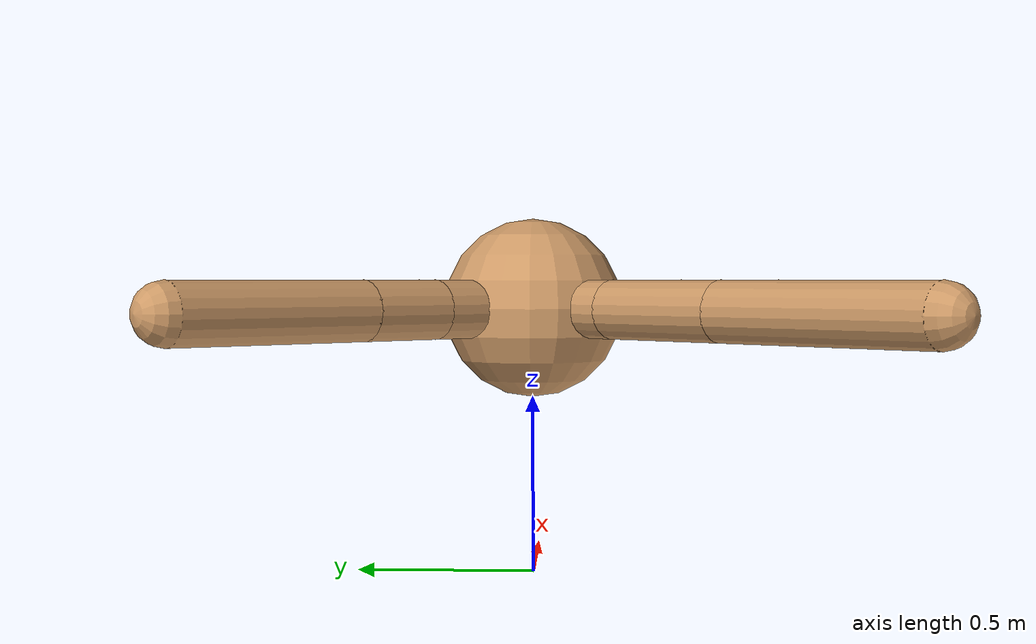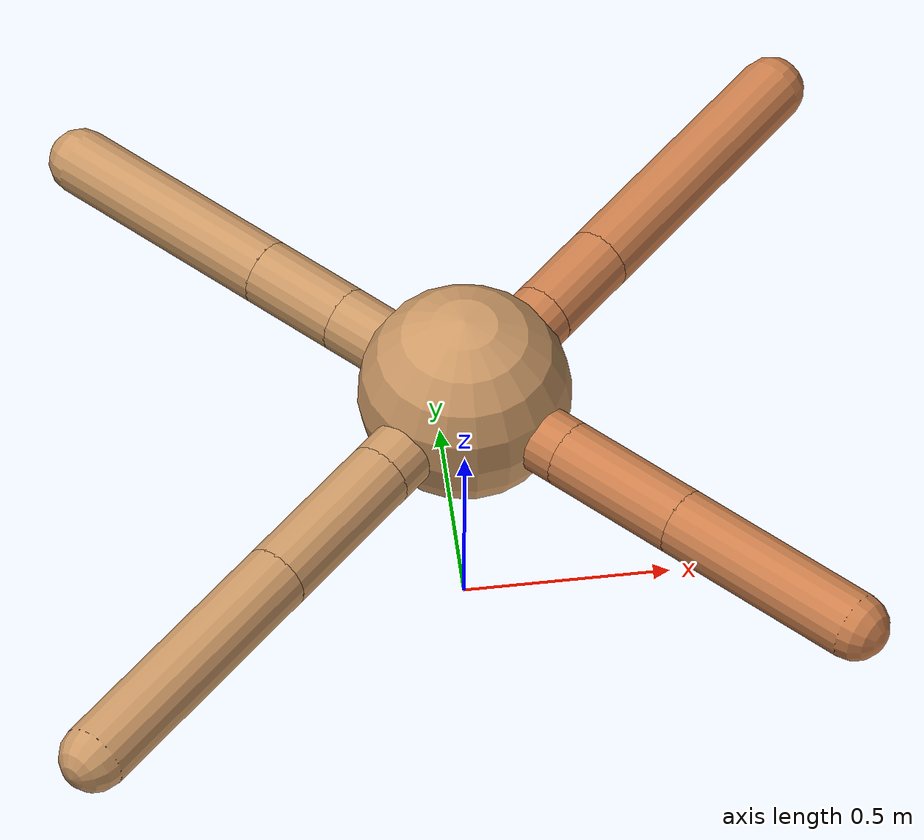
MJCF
<mujoco model="ant">
  <compiler angle="degree" coordinate="local" inertiafromgeom="true" />
  <option integrator="RK4" timestep="0.01" />
  <custom>
    <numeric data="0.0 0.0 0.55 1.0 0.0 0.0 0.0 0.0 1.0 0.0 -1.0 0.0 -1.0 0.0 1.0" name="init_qpos" />
  </custom>
  <default>
    <joint armature="1" damping="1" limited="true" />
    <geom conaffinity="0" condim="3" density="5.0" friction="1.5 0.1 0.1" margin="0.01" rgba="0.8 0.6 0.4 1" />
  </default>
  <worldbody>
    <body name="torso" pos="0 0 0.75">
      <geom name="torso_geom" pos="0 0 0" size="0.25" type="sphere" />

      <body name="front_left_leg" pos="0 0 0">
        <geom fromto="0.0 0.0 0.0 0.20916438421218367 0.20916438421218367 0.0" name="aux_1_geom" size="0.08" type="capsule" rgba=".8 .5 .3 1" />
        <body name="aux_1" pos="0.20916438421218367 0.20916438421218367 0.0">
          <joint axis="0 0 1" name="hip_1" pos="0.0 0.0 0.0" range="-40 40" type="hinge" />
          <geom fromto="0.0 0.0 0.0 0.15339728175161033 0.15339728175161033 0.0" name="left_leg_geom" size="0.08" type="capsule" rgba=".8 .5 .3 1" />
          <body pos="0.15339728175161033 0.15339728175161033 0.0" name="front_left_foot">
            <joint axis="-1 1 0" name="ankle_1" pos="0.0 0.0 0.0" range="30 100" type="hinge" />
            <geom fromto="0.0 0.0 0.0 0.4864451867190816 0.4864451867190816 0.0" name="left_ankle_geom" size="0.08" type="capsule" rgba=".8 .5 .3 1" />
          </body>
        </body>
      </body>
      <body name="front_right_leg" pos="0 0 0">
        <geom fromto="0.0 0.0 0.0 -0.25075719652340234 0.25075719652340234 0.0" name="aux_2_geom" size="0.08" type="capsule" />
        <body name="aux_2" pos="-0.25075719652340234 0.25075719652340234 0.0">
          <joint axis="0 0 1" name="hip_2" pos="0.0 0.0 0.0" range="-40 40" type="hinge" />
          <geom fromto="0.0 0.0 0.0 -0.16652147537261117 0.16652147537261117 0.0" name="right_leg_geom" size="0.08" type="capsule" />
          <body pos="-0.16652147537261117 0.16652147537261117 0.0" name="front_right_foot">
            <joint axis="1 1 0" name="ankle_2" pos="0.0 0.0 0.0" range="-100 -30" type="hinge" />
            <geom fromto="0.0 0.0 0.0 -0.40185817038613963 0.40185817038613963 0.0" name="right_ankle_geom" size="0.08" type="capsule" />
          </body>
        </body>
      </body>
      <body name="left_back_leg" pos="0 0 0">
        <geom fromto="0.0 0.0 0.0 -0.22207778975900336 -0.22207778975900336 0.0" name="aux_3_geom" size="0.08" type="capsule" />
        <body name="aux_3" pos="-0.22207778975900336 -0.22207778975900336 0.0">
          <joint axis="0 0 1" name="hip_3" pos="0.0 0.0 0.0" range="-40 40" type="hinge" />
          <geom fromto="0.0 0.0 0.0 -0.26595091249719144 -0.26595091249719144 0.0" name="back_leg_geom" size="0.08" type="capsule" />
          <body pos="-0.26595091249719144 -0.26595091249719144 0.0" name="left_back_foot">
            <joint axis="-1 1 0" name="ankle_3" pos="0.0 0.0 0.0" range="-100 -30" type="hinge" />
            <geom fromto="0.0 0.0 0.0 -0.45064153225551085 -0.45064153225551085 0.0" name="third_ankle_geom" size="0.08" type="capsule" />
          </body>
        </body>
      </body>
      <body name="right_back_leg" pos="0 0 0">
        <geom fromto="0.0 0.0 0.0 0.21329128279580967 -0.21329128279580967 0.0" name="aux_4_geom" size="0.08" type="capsule" rgba=".8 .5 .3 1" />
        <body name="aux_4" pos="0.21329128279580967 -0.21329128279580967 0.0">
          <joint axis="0 0 1" name="hip_4" pos="0.0 0.0 0.0" range="-40 40" type="hinge" />
          <geom fromto="0.0 0.0 0.0 0.22869608893574986 -0.22869608893574986 0.0" name="rightback_leg_geom" size="0.08" type="capsule" rgba=".8 .5 .3 1" />
          <body pos="0.22869608893574986 -0.22869608893574986 0.0" name="right_back_foot">
            <joint axis="1 1 0" name="ankle_4" pos="0.0 0.0 0.0" range="30 100" type="hinge" />
            <geom fromto="0.0 0.0 0.0 0.3420532162722918 -0.3420532162722918 0.0" name="fourth_ankle_geom" size="0.08" type="capsule" rgba=".8 .5 .3 1" />
          </body>
        </body>
      </body>
    </body>
  </worldbody>
  <actuator>
    <motor ctrllimited="true" ctrlrange="-1.0 1.0" joint="hip_4" gear="150" />
    <motor ctrllimited="true" ctrlrange="-1.0 1.0" joint="ankle_4" gear="150" />
    <motor ctrllimited="true" ctrlrange="-1.0 1.0" joint="hip_1" gear="150" />
    <motor ctrllimited="true" ctrlrange="-1.0 1.0" joint="ankle_1" gear="150" />
    <motor ctrllimited="true" ctrlrange="-1.0 1.0" joint="hip_2" gear="150" />
    <motor ctrllimited="true" ctrlrange="-1.0 1.0" joint="ankle_2" gear="150" />
    <motor ctrllimited="true" ctrlrange="-1.0 1.0" joint="hip_3" gear="150" />
    <motor ctrllimited="true" ctrlrange="-1.0 1.0" joint="ankle_3" gear="150" />
  </actuator>
</mujoco>
